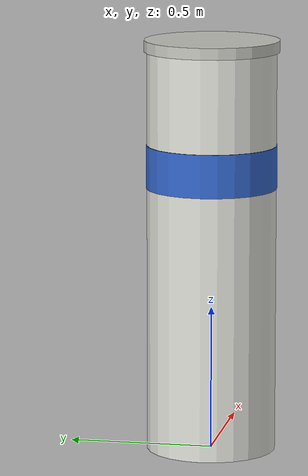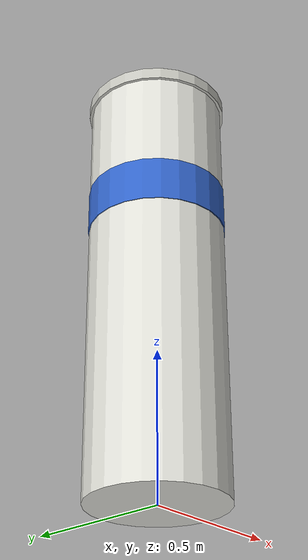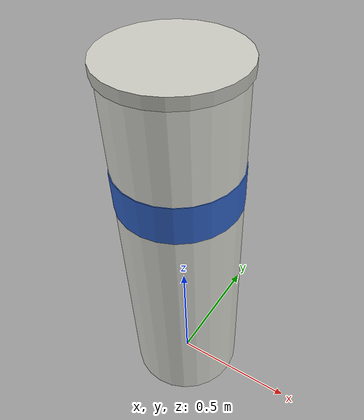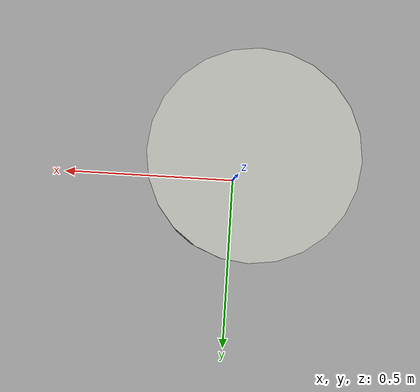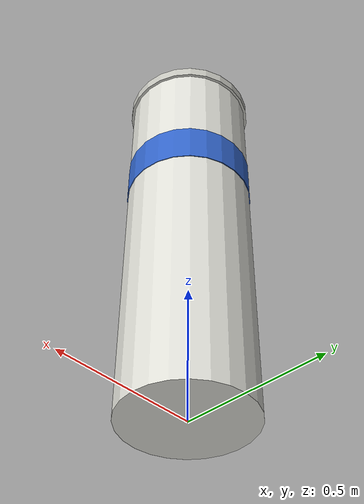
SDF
<?xml version="1.0"?>
<sdf version="1.9">
  <model name="water_heater">
    <static>true</static>

    <plugin filename="gz-sim-label-system" name="gz::sim::systems::Label">
      <label>1</label>
    </plugin>

    <!-- ── Tank body ─────────────────────────────────────────────────────── -->
    <link name="tank">
      <pose>0 0 0.70 0 0 0</pose>

      <visual name="tank_visual">
        <geometry>
          <cylinder>
            <radius>0.225</radius>
            <length>1.40</length>
          </cylinder>
        </geometry>
        <material>
          <ambient>0.85 0.85 0.82 1</ambient>
          <diffuse>0.88 0.88 0.85 1</diffuse>
          <specular>0.1 0.1 0.1 1</specular>
        </material>
      </visual>

      <collision name="tank_collision">
        <geometry>
          <cylinder>
            <radius>0.225</radius>
            <length>1.40</length>
          </cylinder>
        </geometry>
      </collision>
    </link>

    <!-- ── Blue branding band ────────────────────────────────────────────── -->
    <link name="blue_band">
      <pose>0 0 1.00 0 0 0</pose>

      <visual name="band_visual">
        <geometry>
          <cylinder>
            <radius>0.228</radius>
            <length>0.15</length>
          </cylinder>
        </geometry>
        <material>
          <ambient>0.15 0.35 0.75 1</ambient>
          <diffuse>0.2 0.4 0.8 1</diffuse>
        </material>
      </visual>
    </link>

    <!-- ── Top cap ──────────────────────────────────────────────────────── -->
    <link name="top_cap">
      <pose>0 0 1.42 0 0 0</pose>

      <visual name="cap_visual">
        <geometry>
          <cylinder>
            <radius>0.235</radius>
            <length>0.04</length>
          </cylinder>
        </geometry>
        <material>
          <ambient>0.75 0.75 0.72 1</ambient>
          <diffuse>0.78 0.78 0.75 1</diffuse>
        </material>
      </visual>
    </link>

  </model>
</sdf>
